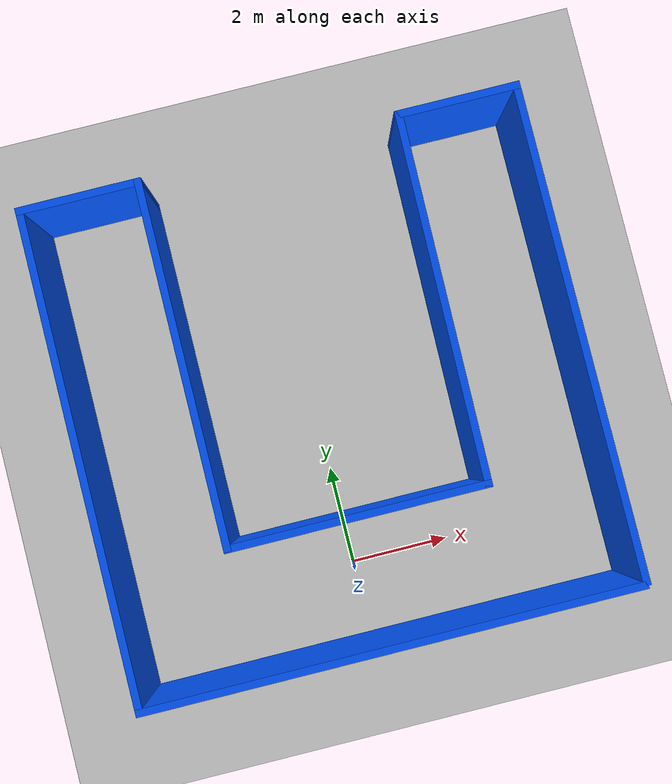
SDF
<sdf version="1.6">
 <world name="default">
  <light name="sun" type="directional">
   <pose>0 0 10 0 -0 0</pose>
   <diffuse>0.8 0.8 0.8 1</diffuse>
   <specular>0.2 0.2 0.2 1</specular>
   <attenuation>
    <range>1000</range>
    <constant>0.9</constant>
    <linear>0.01</linear>
    <quadratic>0.001</quadratic>
   </attenuation>
   <direction>-0.5 0.1 -0.9</direction>
  </light>
  <model name="ground_plane">
   <static>1</static>
   <link name="link">
    <collision name="collision">
     <geometry><plane><normal>0 0 1</normal><size>100 100</size></plane></geometry>
     <surface><friction><ode><mu>100</mu><mu2>50</mu2></ode></friction></surface>
    </collision>
    <visual name="visual">
     <cast_shadows>0</cast_shadows>
     <geometry><plane><normal>0 0 1</normal><size>100 100</size></plane></geometry>
     <material>
      <script><uri>file://media/materials/scripts/gazebo.material</uri><name>Gazebo/Grey</name></script>
     </material>
    </visual>
   </link>
  </model>
  <gravity>0 0 -9.8</gravity>
  <magnetic_field>6e-06 2.3e-05 -4.2e-05</magnetic_field>
  <atmosphere type="adiabatic"/>
  <physics name="default_physics" default="0" type="ode">
   <max_step_size>0.001</max_step_size>
   <real_time_factor>1</real_time_factor>
   <real_time_update_rate>1000</real_time_update_rate>
  </physics>
  <scene><ambient>0.4 0.4 0.4 1</ambient><background>0.7 0.7 0.7 1</background><shadows>1</shadows></scene>
  <spherical_coordinates>
   <surface_model>EARTH_WGS84</surface_model>
   <latitude_deg>0</latitude_deg>
   <longitude_deg>0</longitude_deg>
   <elevation>0</elevation>
   <heading_deg>0</heading_deg>
  </spherical_coordinates>
  <model name="wall_world">
   <pose>0.350626 3.38103 0 0 -0 0</pose>
   <link name="Wall_0">
    <collision name="Wall_0_Collision">
     <geometry><box><size>10 0.15 2.5</size></box></geometry>
     <pose>0 0 1.25 0 -0 0</pose>
    </collision>
    <visual name="Wall_0_Visual">
     <pose>0 0 1.25 0 -0 0</pose>
     <geometry><box><size>10 0.15 2.5</size></box></geometry>
     <material>
      <script><uri>file://media/materials/scripts/gazebo.material</uri><name>Gazebo/Grey</name></script>
      <ambient>0 0.333333 1 1</ambient>
     </material>
     <meta><layer>0</layer></meta>
    </visual>
    <pose>-4.95201 -0.030283 0 0 -0 1.5708</pose>
   </link>
   <link name="Wall_10">
    <collision name="Wall_10_Collision">
     <geometry><box><size>7.47758 0.15 2.5</size></box></geometry>
     <pose>0 0 1.25 0 -0 0</pose>
    </collision>
    <visual name="Wall_10_Visual">
     <pose>0 0 1.25 0 -0 0</pose>
     <geometry><box><size>7.47758 0.15 2.5</size></box></geometry>
     <material>
      <script><uri>file://media/materials/scripts/gazebo.material</uri><name>Gazebo/Grey</name></script>
      <ambient>0 0.333333 1 1</ambient>
     </material>
     <meta><layer>0</layer></meta>
    </visual>
    <pose>2.55601 1.29085 0 0 -0 1.55824</pose>
   </link>
   <link name="Wall_11">
    <collision name="Wall_11_Collision">
     <geometry><box><size>2.5 0.15 2.5</size></box></geometry>
     <pose>0 0 1.25 0 -0 0</pose>
    </collision>
    <visual name="Wall_11_Visual">
     <pose>0 0 1.25 0 -0 0</pose>
     <geometry><box><size>2.5 0.15 2.5</size></box></geometry>
     <material>
      <script><uri>file://media/materials/scripts/gazebo.material</uri><name>Gazebo/Grey</name></script>
      <ambient>0 0.333333 1 1</ambient>
     </material>
     <meta><layer>0</layer></meta>
    </visual>
    <pose>3.77701 4.95435 0 0 -0 0</pose>
   </link>
   <link name="Wall_3">
    <collision name="Wall_3_Collision">
     <geometry><box><size>10 0.15 2.5</size></box></geometry>
     <pose>0 0 1.25 0 -0 0</pose>
    </collision>
    <visual name="Wall_3_Visual">
     <pose>0 0 1.25 0 -0 0</pose>
     <geometry><box><size>10 0.15 2.5</size></box></geometry>
     <material>
      <script><uri>file://media/materials/scripts/gazebo.material</uri><name>Gazebo/Grey</name></script>
      <ambient>0 0.333333 1 1</ambient>
     </material>
     <meta><layer>0</layer></meta>
    </visual>
    <pose>-0.02701 -4.95528 0 0 -0 3.14159</pose>
   </link>
   <link name="Wall_5">
    <collision name="Wall_5_Collision">
     <geometry><box><size>10 0.15 2.5</size></box></geometry>
     <pose>0 0 1.25 0 -0 0</pose>
    </collision>
    <visual name="Wall_5_Visual">
     <pose>0 0 1.25 0 -0 0</pose>
     <geometry><box><size>10 0.15 2.5</size></box></geometry>
     <material>
      <script><uri>file://media/materials/scripts/gazebo.material</uri><name>Gazebo/Grey</name></script>
      <ambient>0 0.333333 1 1</ambient>
     </material>
     <meta><layer>0</layer></meta>
    </visual>
    <pose>4.95201 0.029347 0 0 -0 1.5708</pose>
   </link>
   <link name="Wall_7">
    <collision name="Wall_7_Collision">
     <geometry><box><size>2.5 0.15 2.5</size></box></geometry>
     <pose>0 0 1.25 0 -0 0</pose>
    </collision>
    <visual name="Wall_7_Visual">
     <pose>0 0 1.25 0 -0 0</pose>
     <geometry><box><size>2.5 0.15 2.5</size></box></geometry>
     <material>
      <script><uri>file://media/materials/scripts/gazebo.material</uri><name>Gazebo/Grey</name></script>
      <ambient>0 0.333333 1 1</ambient>
     </material>
     <meta><layer>0</layer></meta>
    </visual>
    <pose>-3.77701 4.89472 0 0 -0 0</pose>
   </link>
   <link name="Wall_8">
    <collision name="Wall_8_Collision">
     <geometry><box><size>7.41738 0.15 2.5</size></box></geometry>
     <pose>0 0 1.25 0 -0 0</pose>
    </collision>
    <visual name="Wall_8_Visual">
     <pose>0 0 1.25 0 -0 0</pose>
     <geometry><box><size>7.41738 0.15 2.5</size></box></geometry>
     <material>
      <script><uri>file://media/materials/scripts/gazebo.material</uri><name>Gazebo/Grey</name></script>
      <ambient>0 0.333333 1 1</ambient>
     </material>
     <meta><layer>0</layer></meta>
    </visual>
    <pose>-2.6075 1.26103 0 0 0 -1.57231</pose>
   </link>
   <link name="Wall_9">
    <collision name="Wall_9_Collision">
     <geometry><box><size>5.25 0.15 2.5</size></box></geometry>
     <pose>0 0 1.25 0 -0 0</pose>
    </collision>
    <visual name="Wall_9_Visual">
     <pose>0 0 1.25 0 -0 0</pose>
     <geometry><box><size>5.25 0.15 2.5</size></box></geometry>
     <material>
      <script><uri>file://media/materials/scripts/gazebo.material</uri><name>Gazebo/Grey</name></script>
      <ambient>0 0.333333 1 1</ambient>
     </material>
     <meta><layer>0</layer></meta>
    </visual>
    <pose>-0.03999 -2.37265 0 0 -0 0</pose>
   </link>
   <static>1</static>
  </model>
 </world>
</sdf>
